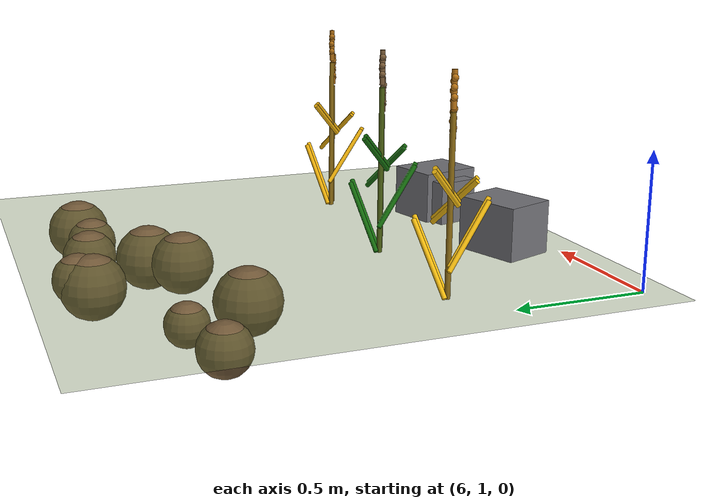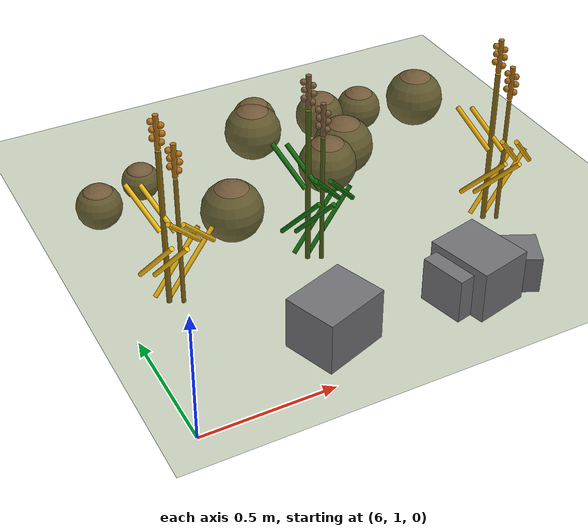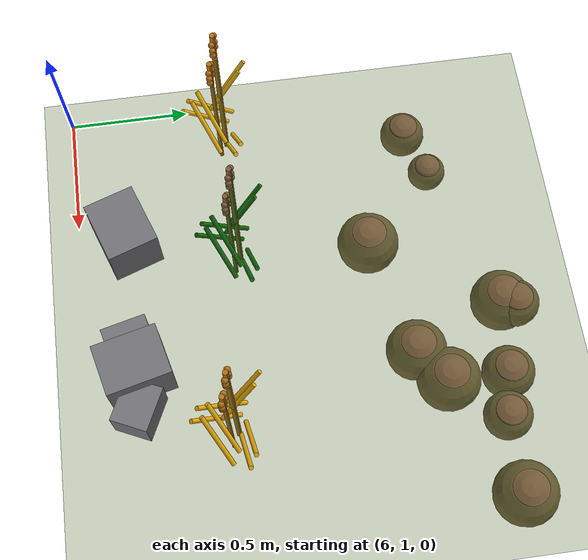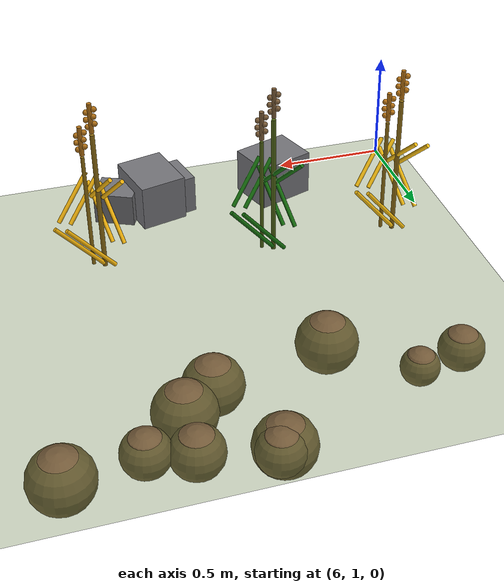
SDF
<sdf version="1.6">
 <world name="default">
  <model name="ground">
   <static>true</static>
   <link name="link">
    <collision name="col"><geometry><plane><normal>0 0 1</normal><size>40 40</size></plane></geometry></collision>
    <visual name="vis">
     <geometry><plane><normal>0 0 1</normal><size>40 40</size></plane></geometry>
     <material><ambient>0.30 0.40 0.15 1</ambient><diffuse>0.30 0.40 0.15 1</diffuse></material>
    </visual>
   </link>
  </model>
  <model name="plant_28">
   <static>true</static>
   <pose>6.18 1.66 0 0 0 0</pose>
   <link name="link">
    <visual name="stem_0">
     <pose>0.000 0.000 0.320 0.000 0.000 0.000</pose>
     <geometry><cylinder><radius>0.01</radius><length>0.64</length></cylinder></geometry>
     <material><ambient>0.55 0.42 0.08 1</ambient><diffuse>0.55 0.42 0.08 1</diffuse></material>
    </visual>
    <visual name="leaf_0_0">
     <pose>0.055 0.045 0.130 0.000 0.700 0.150</pose>
     <geometry><cylinder><radius>0.009</radius><length>0.3</length></cylinder></geometry>
     <material><ambient>0.95 0.73 0.06 1</ambient><diffuse>0.95 0.73 0.06 1</diffuse></material>
    </visual>
    <visual name="leaf_0_1">
     <pose>-0.055 -0.045 0.230 0.000 -0.720 1.900</pose>
     <geometry><cylinder><radius>0.009</radius><length>0.28</length></cylinder></geometry>
     <material><ambient>0.95 0.73 0.06 1</ambient><diffuse>0.95 0.73 0.06 1</diffuse></material>
    </visual>
    <visual name="leaf_0_2">
     <pose>0.055 -0.045 0.320 0.000 0.780 3.700</pose>
     <geometry><cylinder><radius>0.009</radius><length>0.24</length></cylinder></geometry>
     <material><ambient>0.95 0.73 0.06 1</ambient><diffuse>0.95 0.73 0.06 1</diffuse></material>
    </visual>
    <visual name="leaf_0_3">
     <pose>-0.055 0.045 0.400 0.000 -0.800 5.200</pose>
     <geometry><cylinder><radius>0.009</radius><length>0.2</length></cylinder></geometry>
     <material><ambient>0.95 0.73 0.06 1</ambient><diffuse>0.95 0.73 0.06 1</diffuse></material>
    </visual>
    <visual name="stem_1">
     <pose>0.045 -0.025 0.265 0.000 0.000 0.000</pose>
     <geometry><cylinder><radius>0.008</radius><length>0.53</length></cylinder></geometry>
     <material><ambient>0.55 0.42 0.08 1</ambient><diffuse>0.55 0.42 0.08 1</diffuse></material>
    </visual>
    <visual name="leaf_1_0">
     <pose>0.100 0.020 0.130 0.000 0.700 0.150</pose>
     <geometry><cylinder><radius>0.009</radius><length>0.3</length></cylinder></geometry>
     <material><ambient>0.95 0.73 0.06 1</ambient><diffuse>0.95 0.73 0.06 1</diffuse></material>
    </visual>
    <visual name="leaf_1_1">
     <pose>-0.010 -0.070 0.230 0.000 -0.720 1.900</pose>
     <geometry><cylinder><radius>0.009</radius><length>0.28</length></cylinder></geometry>
     <material><ambient>0.95 0.73 0.06 1</ambient><diffuse>0.95 0.73 0.06 1</diffuse></material>
    </visual>
    <visual name="leaf_1_2">
     <pose>0.100 -0.070 0.320 0.000 0.780 3.700</pose>
     <geometry><cylinder><radius>0.009</radius><length>0.24</length></cylinder></geometry>
     <material><ambient>0.95 0.73 0.06 1</ambient><diffuse>0.95 0.73 0.06 1</diffuse></material>
    </visual>
    <visual name="leaf_1_3">
     <pose>-0.010 0.020 0.400 0.000 -0.800 5.200</pose>
     <geometry><cylinder><radius>0.009</radius><length>0.2</length></cylinder></geometry>
     <material><ambient>0.95 0.73 0.06 1</ambient><diffuse>0.95 0.73 0.06 1</diffuse></material>
    </visual>
    <visual name="ear_axis_0">
     <pose>0.000 0.000 0.715 0.000 0.000 0.000</pose>
     <geometry><cylinder><radius>0.010</radius><length>0.13</length></cylinder></geometry>
     <material><ambient>0.72 0.45 0.08 1</ambient><diffuse>0.72 0.45 0.08 1</diffuse></material>
    </visual>
    <visual name="grain_0_0">
     <pose>0.012 -0.006 0.675 0.000 0.000 0.000</pose>
     <geometry><sphere><radius>0.012</radius></sphere></geometry>
     <material><ambient>0.72 0.45 0.08 1</ambient><diffuse>0.72 0.45 0.08 1</diffuse></material>
    </visual>
    <visual name="grain_0_1">
     <pose>-0.014 0.006 0.691 0.000 0.000 0.000</pose>
     <geometry><sphere><radius>0.012</radius></sphere></geometry>
     <material><ambient>0.72 0.45 0.08 1</ambient><diffuse>0.72 0.45 0.08 1</diffuse></material>
    </visual>
    <visual name="grain_0_2">
     <pose>0.016 -0.006 0.707 0.000 0.000 0.000</pose>
     <geometry><sphere><radius>0.012</radius></sphere></geometry>
     <material><ambient>0.72 0.45 0.08 1</ambient><diffuse>0.72 0.45 0.08 1</diffuse></material>
    </visual>
    <visual name="grain_0_3">
     <pose>-0.012 0.006 0.723 0.000 0.000 0.000</pose>
     <geometry><sphere><radius>0.012</radius></sphere></geometry>
     <material><ambient>0.72 0.45 0.08 1</ambient><diffuse>0.72 0.45 0.08 1</diffuse></material>
    </visual>
    <visual name="grain_0_4">
     <pose>0.014 -0.006 0.739 0.000 0.000 0.000</pose>
     <geometry><sphere><radius>0.012</radius></sphere></geometry>
     <material><ambient>0.72 0.45 0.08 1</ambient><diffuse>0.72 0.45 0.08 1</diffuse></material>
    </visual>
    <visual name="grain_0_5">
     <pose>-0.016 0.006 0.755 0.000 0.000 0.000</pose>
     <geometry><sphere><radius>0.012</radius></sphere></geometry>
     <material><ambient>0.72 0.45 0.08 1</ambient><diffuse>0.72 0.45 0.08 1</diffuse></material>
    </visual>
    <visual name="ear_axis_1">
     <pose>0.045 -0.025 0.605 0.000 0.000 0.000</pose>
     <geometry><cylinder><radius>0.010</radius><length>0.13</length></cylinder></geometry>
     <material><ambient>0.72 0.45 0.08 1</ambient><diffuse>0.72 0.45 0.08 1</diffuse></material>
    </visual>
    <visual name="grain_1_0">
     <pose>0.057 -0.031 0.565 0.000 0.000 0.000</pose>
     <geometry><sphere><radius>0.012</radius></sphere></geometry>
     <material><ambient>0.72 0.45 0.08 1</ambient><diffuse>0.72 0.45 0.08 1</diffuse></material>
    </visual>
    <visual name="grain_1_1">
     <pose>0.031 -0.019 0.581 0.000 0.000 0.000</pose>
     <geometry><sphere><radius>0.012</radius></sphere></geometry>
     <material><ambient>0.72 0.45 0.08 1</ambient><diffuse>0.72 0.45 0.08 1</diffuse></material>
    </visual>
    <visual name="grain_1_2">
     <pose>0.061 -0.031 0.597 0.000 0.000 0.000</pose>
     <geometry><sphere><radius>0.012</radius></sphere></geometry>
     <material><ambient>0.72 0.45 0.08 1</ambient><diffuse>0.72 0.45 0.08 1</diffuse></material>
    </visual>
    <visual name="grain_1_3">
     <pose>0.033 -0.019 0.613 0.000 0.000 0.000</pose>
     <geometry><sphere><radius>0.012</radius></sphere></geometry>
     <material><ambient>0.72 0.45 0.08 1</ambient><diffuse>0.72 0.45 0.08 1</diffuse></material>
    </visual>
    <visual name="grain_1_4">
     <pose>0.059 -0.031 0.629 0.000 0.000 0.000</pose>
     <geometry><sphere><radius>0.012</radius></sphere></geometry>
     <material><ambient>0.72 0.45 0.08 1</ambient><diffuse>0.72 0.45 0.08 1</diffuse></material>
    </visual>
    <visual name="grain_1_5">
     <pose>0.029 -0.019 0.645 0.000 0.000 0.000</pose>
     <geometry><sphere><radius>0.012</radius></sphere></geometry>
     <material><ambient>0.72 0.45 0.08 1</ambient><diffuse>0.72 0.45 0.08 1</diffuse></material>
    </visual>
   </link>
  </model>
  <model name="plant_29">
   <static>true</static>
   <pose>6.74 1.66 0 0 0 0</pose>
   <link name="link">
    <visual name="stem_0">
     <pose>0.000 0.000 0.320 0.000 0.000 0.000</pose>
     <geometry><cylinder><radius>0.01</radius><length>0.64</length></cylinder></geometry>
     <material><ambient>0.30 0.38 0.08 1</ambient><diffuse>0.30 0.38 0.08 1</diffuse></material>
    </visual>
    <visual name="leaf_0_0">
     <pose>0.055 0.045 0.130 0.000 0.700 0.150</pose>
     <geometry><cylinder><radius>0.009</radius><length>0.3</length></cylinder></geometry>
     <material><ambient>0.08 0.42 0.05 1</ambient><diffuse>0.08 0.42 0.05 1</diffuse></material>
    </visual>
    <visual name="leaf_0_1">
     <pose>-0.055 -0.045 0.230 0.000 -0.720 1.900</pose>
     <geometry><cylinder><radius>0.009</radius><length>0.28</length></cylinder></geometry>
     <material><ambient>0.08 0.42 0.05 1</ambient><diffuse>0.08 0.42 0.05 1</diffuse></material>
    </visual>
    <visual name="leaf_0_2">
     <pose>0.055 -0.045 0.320 0.000 0.780 3.700</pose>
     <geometry><cylinder><radius>0.009</radius><length>0.24</length></cylinder></geometry>
     <material><ambient>0.08 0.42 0.05 1</ambient><diffuse>0.08 0.42 0.05 1</diffuse></material>
    </visual>
    <visual name="leaf_0_3">
     <pose>-0.055 0.045 0.400 0.000 -0.800 5.200</pose>
     <geometry><cylinder><radius>0.009</radius><length>0.2</length></cylinder></geometry>
     <material><ambient>0.08 0.42 0.05 1</ambient><diffuse>0.08 0.42 0.05 1</diffuse></material>
    </visual>
    <visual name="stem_1">
     <pose>0.045 -0.025 0.265 0.000 0.000 0.000</pose>
     <geometry><cylinder><radius>0.008</radius><length>0.53</length></cylinder></geometry>
     <material><ambient>0.30 0.38 0.08 1</ambient><diffuse>0.30 0.38 0.08 1</diffuse></material>
    </visual>
    <visual name="leaf_1_0">
     <pose>0.100 0.020 0.130 0.000 0.700 0.150</pose>
     <geometry><cylinder><radius>0.009</radius><length>0.3</length></cylinder></geometry>
     <material><ambient>0.08 0.42 0.05 1</ambient><diffuse>0.08 0.42 0.05 1</diffuse></material>
    </visual>
    <visual name="leaf_1_1">
     <pose>-0.010 -0.070 0.230 0.000 -0.720 1.900</pose>
     <geometry><cylinder><radius>0.009</radius><length>0.28</length></cylinder></geometry>
     <material><ambient>0.08 0.42 0.05 1</ambient><diffuse>0.08 0.42 0.05 1</diffuse></material>
    </visual>
    <visual name="leaf_1_2">
     <pose>0.100 -0.070 0.320 0.000 0.780 3.700</pose>
     <geometry><cylinder><radius>0.009</radius><length>0.24</length></cylinder></geometry>
     <material><ambient>0.08 0.42 0.05 1</ambient><diffuse>0.08 0.42 0.05 1</diffuse></material>
    </visual>
    <visual name="leaf_1_3">
     <pose>-0.010 0.020 0.400 0.000 -0.800 5.200</pose>
     <geometry><cylinder><radius>0.009</radius><length>0.2</length></cylinder></geometry>
     <material><ambient>0.08 0.42 0.05 1</ambient><diffuse>0.08 0.42 0.05 1</diffuse></material>
    </visual>
    <visual name="ear_axis_0">
     <pose>0.000 0.000 0.715 0.000 0.000 0.000</pose>
     <geometry><cylinder><radius>0.010</radius><length>0.13</length></cylinder></geometry>
     <material><ambient>0.48 0.36 0.22 1</ambient><diffuse>0.48 0.36 0.22 1</diffuse></material>
    </visual>
    <visual name="grain_0_0">
     <pose>0.012 -0.006 0.675 0.000 0.000 0.000</pose>
     <geometry><sphere><radius>0.012</radius></sphere></geometry>
     <material><ambient>0.48 0.36 0.22 1</ambient><diffuse>0.48 0.36 0.22 1</diffuse></material>
    </visual>
    <visual name="grain_0_1">
     <pose>-0.014 0.006 0.691 0.000 0.000 0.000</pose>
     <geometry><sphere><radius>0.012</radius></sphere></geometry>
     <material><ambient>0.48 0.36 0.22 1</ambient><diffuse>0.48 0.36 0.22 1</diffuse></material>
    </visual>
    <visual name="grain_0_2">
     <pose>0.016 -0.006 0.707 0.000 0.000 0.000</pose>
     <geometry><sphere><radius>0.012</radius></sphere></geometry>
     <material><ambient>0.48 0.36 0.22 1</ambient><diffuse>0.48 0.36 0.22 1</diffuse></material>
    </visual>
    <visual name="grain_0_3">
     <pose>-0.012 0.006 0.723 0.000 0.000 0.000</pose>
     <geometry><sphere><radius>0.012</radius></sphere></geometry>
     <material><ambient>0.48 0.36 0.22 1</ambient><diffuse>0.48 0.36 0.22 1</diffuse></material>
    </visual>
    <visual name="grain_0_4">
     <pose>0.014 -0.006 0.739 0.000 0.000 0.000</pose>
     <geometry><sphere><radius>0.012</radius></sphere></geometry>
     <material><ambient>0.48 0.36 0.22 1</ambient><diffuse>0.48 0.36 0.22 1</diffuse></material>
    </visual>
    <visual name="grain_0_5">
     <pose>-0.016 0.006 0.755 0.000 0.000 0.000</pose>
     <geometry><sphere><radius>0.012</radius></sphere></geometry>
     <material><ambient>0.48 0.36 0.22 1</ambient><diffuse>0.48 0.36 0.22 1</diffuse></material>
    </visual>
    <visual name="ear_axis_1">
     <pose>0.045 -0.025 0.605 0.000 0.000 0.000</pose>
     <geometry><cylinder><radius>0.010</radius><length>0.13</length></cylinder></geometry>
     <material><ambient>0.48 0.36 0.22 1</ambient><diffuse>0.48 0.36 0.22 1</diffuse></material>
    </visual>
    <visual name="grain_1_0">
     <pose>0.057 -0.031 0.565 0.000 0.000 0.000</pose>
     <geometry><sphere><radius>0.012</radius></sphere></geometry>
     <material><ambient>0.48 0.36 0.22 1</ambient><diffuse>0.48 0.36 0.22 1</diffuse></material>
    </visual>
    <visual name="grain_1_1">
     <pose>0.031 -0.019 0.581 0.000 0.000 0.000</pose>
     <geometry><sphere><radius>0.012</radius></sphere></geometry>
     <material><ambient>0.48 0.36 0.22 1</ambient><diffuse>0.48 0.36 0.22 1</diffuse></material>
    </visual>
    <visual name="grain_1_2">
     <pose>0.061 -0.031 0.597 0.000 0.000 0.000</pose>
     <geometry><sphere><radius>0.012</radius></sphere></geometry>
     <material><ambient>0.48 0.36 0.22 1</ambient><diffuse>0.48 0.36 0.22 1</diffuse></material>
    </visual>
    <visual name="grain_1_3">
     <pose>0.033 -0.019 0.613 0.000 0.000 0.000</pose>
     <geometry><sphere><radius>0.012</radius></sphere></geometry>
     <material><ambient>0.48 0.36 0.22 1</ambient><diffuse>0.48 0.36 0.22 1</diffuse></material>
    </visual>
    <visual name="grain_1_4">
     <pose>0.059 -0.031 0.629 0.000 0.000 0.000</pose>
     <geometry><sphere><radius>0.012</radius></sphere></geometry>
     <material><ambient>0.48 0.36 0.22 1</ambient><diffuse>0.48 0.36 0.22 1</diffuse></material>
    </visual>
    <visual name="grain_1_5">
     <pose>0.029 -0.019 0.645 0.000 0.000 0.000</pose>
     <geometry><sphere><radius>0.012</radius></sphere></geometry>
     <material><ambient>0.48 0.36 0.22 1</ambient><diffuse>0.48 0.36 0.22 1</diffuse></material>
    </visual>
   </link>
  </model>
  <model name="plant_30">
   <static>true</static>
   <pose>7.47 1.57 0 0 0 0</pose>
   <link name="link">
    <visual name="stem_0">
     <pose>0.000 0.000 0.320 0.000 0.000 0.000</pose>
     <geometry><cylinder><radius>0.01</radius><length>0.64</length></cylinder></geometry>
     <material><ambient>0.55 0.42 0.08 1</ambient><diffuse>0.55 0.42 0.08 1</diffuse></material>
    </visual>
    <visual name="leaf_0_0">
     <pose>0.055 0.045 0.130 0.000 0.700 0.150</pose>
     <geometry><cylinder><radius>0.009</radius><length>0.3</length></cylinder></geometry>
     <material><ambient>0.92 0.68 0.04 1</ambient><diffuse>0.92 0.68 0.04 1</diffuse></material>
    </visual>
    <visual name="leaf_0_1">
     <pose>-0.055 -0.045 0.230 0.000 -0.720 1.900</pose>
     <geometry><cylinder><radius>0.009</radius><length>0.28</length></cylinder></geometry>
     <material><ambient>0.92 0.68 0.04 1</ambient><diffuse>0.92 0.68 0.04 1</diffuse></material>
    </visual>
    <visual name="leaf_0_2">
     <pose>0.055 -0.045 0.320 0.000 0.780 3.700</pose>
     <geometry><cylinder><radius>0.009</radius><length>0.24</length></cylinder></geometry>
     <material><ambient>0.92 0.68 0.04 1</ambient><diffuse>0.92 0.68 0.04 1</diffuse></material>
    </visual>
    <visual name="leaf_0_3">
     <pose>-0.055 0.045 0.400 0.000 -0.800 5.200</pose>
     <geometry><cylinder><radius>0.009</radius><length>0.2</length></cylinder></geometry>
     <material><ambient>0.92 0.68 0.04 1</ambient><diffuse>0.92 0.68 0.04 1</diffuse></material>
    </visual>
    <visual name="stem_1">
     <pose>0.045 -0.025 0.265 0.000 0.000 0.000</pose>
     <geometry><cylinder><radius>0.008</radius><length>0.53</length></cylinder></geometry>
     <material><ambient>0.55 0.42 0.08 1</ambient><diffuse>0.55 0.42 0.08 1</diffuse></material>
    </visual>
    <visual name="leaf_1_0">
     <pose>0.100 0.020 0.130 0.000 0.700 0.150</pose>
     <geometry><cylinder><radius>0.009</radius><length>0.3</length></cylinder></geometry>
     <material><ambient>0.92 0.68 0.04 1</ambient><diffuse>0.92 0.68 0.04 1</diffuse></material>
    </visual>
    <visual name="leaf_1_1">
     <pose>-0.010 -0.070 0.230 0.000 -0.720 1.900</pose>
     <geometry><cylinder><radius>0.009</radius><length>0.28</length></cylinder></geometry>
     <material><ambient>0.92 0.68 0.04 1</ambient><diffuse>0.92 0.68 0.04 1</diffuse></material>
    </visual>
    <visual name="leaf_1_2">
     <pose>0.100 -0.070 0.320 0.000 0.780 3.700</pose>
     <geometry><cylinder><radius>0.009</radius><length>0.24</length></cylinder></geometry>
     <material><ambient>0.92 0.68 0.04 1</ambient><diffuse>0.92 0.68 0.04 1</diffuse></material>
    </visual>
    <visual name="leaf_1_3">
     <pose>-0.010 0.020 0.400 0.000 -0.800 5.200</pose>
     <geometry><cylinder><radius>0.009</radius><length>0.2</length></cylinder></geometry>
     <material><ambient>0.92 0.68 0.04 1</ambient><diffuse>0.92 0.68 0.04 1</diffuse></material>
    </visual>
    <visual name="ear_axis_0">
     <pose>0.000 0.000 0.715 0.000 0.000 0.000</pose>
     <geometry><cylinder><radius>0.010</radius><length>0.13</length></cylinder></geometry>
     <material><ambient>0.68 0.43 0.08 1</ambient><diffuse>0.68 0.43 0.08 1</diffuse></material>
    </visual>
    <visual name="grain_0_0">
     <pose>0.012 -0.006 0.675 0.000 0.000 0.000</pose>
     <geometry><sphere><radius>0.012</radius></sphere></geometry>
     <material><ambient>0.68 0.43 0.08 1</ambient><diffuse>0.68 0.43 0.08 1</diffuse></material>
    </visual>
    <visual name="grain_0_1">
     <pose>-0.014 0.006 0.691 0.000 0.000 0.000</pose>
     <geometry><sphere><radius>0.012</radius></sphere></geometry>
     <material><ambient>0.68 0.43 0.08 1</ambient><diffuse>0.68 0.43 0.08 1</diffuse></material>
    </visual>
    <visual name="grain_0_2">
     <pose>0.016 -0.006 0.707 0.000 0.000 0.000</pose>
     <geometry><sphere><radius>0.012</radius></sphere></geometry>
     <material><ambient>0.68 0.43 0.08 1</ambient><diffuse>0.68 0.43 0.08 1</diffuse></material>
    </visual>
    <visual name="grain_0_3">
     <pose>-0.012 0.006 0.723 0.000 0.000 0.000</pose>
     <geometry><sphere><radius>0.012</radius></sphere></geometry>
     <material><ambient>0.68 0.43 0.08 1</ambient><diffuse>0.68 0.43 0.08 1</diffuse></material>
    </visual>
    <visual name="grain_0_4">
     <pose>0.014 -0.006 0.739 0.000 0.000 0.000</pose>
     <geometry><sphere><radius>0.012</radius></sphere></geometry>
     <material><ambient>0.68 0.43 0.08 1</ambient><diffuse>0.68 0.43 0.08 1</diffuse></material>
    </visual>
    <visual name="grain_0_5">
     <pose>-0.016 0.006 0.755 0.000 0.000 0.000</pose>
     <geometry><sphere><radius>0.012</radius></sphere></geometry>
     <material><ambient>0.68 0.43 0.08 1</ambient><diffuse>0.68 0.43 0.08 1</diffuse></material>
    </visual>
    <visual name="ear_axis_1">
     <pose>0.045 -0.025 0.605 0.000 0.000 0.000</pose>
     <geometry><cylinder><radius>0.010</radius><length>0.13</length></cylinder></geometry>
     <material><ambient>0.68 0.43 0.08 1</ambient><diffuse>0.68 0.43 0.08 1</diffuse></material>
    </visual>
    <visual name="grain_1_0">
     <pose>0.057 -0.031 0.565 0.000 0.000 0.000</pose>
     <geometry><sphere><radius>0.012</radius></sphere></geometry>
     <material><ambient>0.68 0.43 0.08 1</ambient><diffuse>0.68 0.43 0.08 1</diffuse></material>
    </visual>
    <visual name="grain_1_1">
     <pose>0.031 -0.019 0.581 0.000 0.000 0.000</pose>
     <geometry><sphere><radius>0.012</radius></sphere></geometry>
     <material><ambient>0.68 0.43 0.08 1</ambient><diffuse>0.68 0.43 0.08 1</diffuse></material>
    </visual>
    <visual name="grain_1_2">
     <pose>0.061 -0.031 0.597 0.000 0.000 0.000</pose>
     <geometry><sphere><radius>0.012</radius></sphere></geometry>
     <material><ambient>0.68 0.43 0.08 1</ambient><diffuse>0.68 0.43 0.08 1</diffuse></material>
    </visual>
    <visual name="grain_1_3">
     <pose>0.033 -0.019 0.613 0.000 0.000 0.000</pose>
     <geometry><sphere><radius>0.012</radius></sphere></geometry>
     <material><ambient>0.68 0.43 0.08 1</ambient><diffuse>0.68 0.43 0.08 1</diffuse></material>
    </visual>
    <visual name="grain_1_4">
     <pose>0.059 -0.031 0.629 0.000 0.000 0.000</pose>
     <geometry><sphere><radius>0.012</radius></sphere></geometry>
     <material><ambient>0.68 0.43 0.08 1</ambient><diffuse>0.68 0.43 0.08 1</diffuse></material>
    </visual>
    <visual name="grain_1_5">
     <pose>0.029 -0.019 0.645 0.000 0.000 0.000</pose>
     <geometry><sphere><radius>0.012</radius></sphere></geometry>
     <material><ambient>0.68 0.43 0.08 1</ambient><diffuse>0.68 0.43 0.08 1</diffuse></material>
    </visual>
   </link>
  </model>
  <model name="rock_01">
   <static>true</static>
   <pose>7.34 1.20 0.074 0 0 2.70</pose>
   <link name="link">
    <collision name="c"><geometry><box><size>0.18 0.15 0.147</size></box></geometry></collision>
    <visual name="v">
     <geometry><box><size>0.18 0.15 0.147</size></box></geometry>
     <material><ambient>0.45 0.45 0.47 1</ambient><diffuse>0.45 0.45 0.47 1</diffuse></material>
    </visual>
   </link>
  </model>
  <model name="rock_03">
   <static>true</static>
   <pose>7.18 1.20 0.103 0 0 1.81</pose>
   <link name="link">
    <collision name="c"><geometry><box><size>0.26 0.21 0.207</size></box></geometry></collision>
    <visual name="v">
     <geometry><box><size>0.26 0.21 0.207</size></box></geometry>
     <material><ambient>0.45 0.45 0.47 1</ambient><diffuse>0.45 0.45 0.47 1</diffuse></material>
    </visual>
   </link>
  </model>
  <model name="rock_07">
   <static>true</static>
   <pose>6.60 1.20 0.104 0 0 0.34</pose>
   <link name="link">
    <collision name="c"><geometry><box><size>0.26 0.21 0.207</size></box></geometry></collision>
    <visual name="v">
     <geometry><box><size>0.26 0.21 0.207</size></box></geometry>
     <material><ambient>0.45 0.45 0.47 1</ambient><diffuse>0.45 0.45 0.47 1</diffuse></material>
    </visual>
   </link>
  </model>
  <model name="rock_09">
   <static>true</static>
   <pose>7.12 1.20 0.088 0 0 0.24</pose>
   <link name="link">
    <collision name="c"><geometry><box><size>0.22 0.18 0.176</size></box></geometry></collision>
    <visual name="v">
     <geometry><box><size>0.22 0.18 0.176</size></box></geometry>
     <material><ambient>0.45 0.45 0.47 1</ambient><diffuse>0.45 0.45 0.47 1</diffuse></material>
    </visual>
   </link>
  </model>
  <model name="bump_2_04">
   <static>true</static>
   <pose>7.34 2.68 -0.089 0 0 0</pose>
   <link name="link">
    <collision name="c"><geometry><sphere><radius>0.109</radius></sphere></geometry></collision>
    <visual name="v">
     <geometry><sphere><radius>0.109</radius></sphere></geometry>
     <material><ambient>0.45 0.35 0.22 1</ambient><diffuse>0.45 0.35 0.22 1</diffuse></material>
    </visual>
   </link>
  </model>
  <model name="bump_2_06">
   <static>true</static>
   <pose>6.40 2.51 -0.060 0 0 0</pose>
   <link name="link">
    <collision name="c"><geometry><sphere><radius>0.080</radius></sphere></geometry></collision>
    <visual name="v">
     <geometry><sphere><radius>0.080</radius></sphere></geometry>
     <material><ambient>0.45 0.35 0.22 1</ambient><diffuse>0.45 0.35 0.22 1</diffuse></material>
    </visual>
   </link>
  </model>
  <model name="bump_2_07">
   <static>true</static>
   <pose>6.19 2.44 -0.076 0 0 0</pose>
   <link name="link">
    <collision name="c"><geometry><sphere><radius>0.096</radius></sphere></geometry></collision>
    <visual name="v">
     <geometry><sphere><radius>0.096</radius></sphere></geometry>
     <material><ambient>0.45 0.35 0.22 1</ambient><diffuse>0.45 0.35 0.22 1</diffuse></material>
    </visual>
   </link>
  </model>
  <model name="bump_2_09">
   <static>true</static>
   <pose>7.33 2.44 -0.113 0 0 0</pose>
   <link name="link">
    <collision name="c"><geometry><sphere><radius>0.133</radius></sphere></geometry></collision>
    <visual name="v">
     <geometry><sphere><radius>0.133</radius></sphere></geometry>
     <material><ambient>0.45 0.35 0.22 1</ambient><diffuse>0.45 0.35 0.22 1</diffuse></material>
    </visual>
   </link>
  </model>
  <model name="bump_2_12">
   <static>true</static>
   <pose>7.02 2.72 -0.108 0 0 0</pose>
   <link name="link">
    <collision name="c"><geometry><sphere><radius>0.128</radius></sphere></geometry></collision>
    <visual name="v">
     <geometry><sphere><radius>0.128</radius></sphere></geometry>
     <material><ambient>0.45 0.35 0.22 1</ambient><diffuse>0.45 0.35 0.22 1</diffuse></material>
    </visual>
   </link>
  </model>
  <model name="bump_2_14">
   <static>true</static>
   <pose>7.19 2.33 -0.107 0 0 0</pose>
   <link name="link">
    <collision name="c"><geometry><sphere><radius>0.127</radius></sphere></geometry></collision>
    <visual name="v">
     <geometry><sphere><radius>0.127</radius></sphere></geometry>
     <material><ambient>0.45 0.35 0.22 1</ambient><diffuse>0.45 0.35 0.22 1</diffuse></material>
    </visual>
   </link>
  </model>
  <model name="bump_2_16">
   <static>true</static>
   <pose>7.83 2.65 -0.112 0 0 0</pose>
   <link name="link">
    <collision name="c"><geometry><sphere><radius>0.132</radius></sphere></geometry></collision>
    <visual name="v">
     <geometry><sphere><radius>0.132</radius></sphere></geometry>
     <material><ambient>0.45 0.35 0.22 1</ambient><diffuse>0.45 0.35 0.22 1</diffuse></material>
    </visual>
   </link>
  </model>
  <model name="bump_2_18">
   <static>true</static>
   <pose>7.52 2.64 -0.080 0 0 0</pose>
   <link name="link">
    <collision name="c"><geometry><sphere><radius>0.100</radius></sphere></geometry></collision>
    <visual name="v">
     <geometry><sphere><radius>0.100</radius></sphere></geometry>
     <material><ambient>0.45 0.35 0.22 1</ambient><diffuse>0.45 0.35 0.22 1</diffuse></material>
    </visual>
   </link>
  </model>
  <model name="bump_2_19">
   <static>true</static>
   <pose>6.68 2.21 -0.112 0 0 0</pose>
   <link name="link">
    <collision name="c"><geometry><sphere><radius>0.132</radius></sphere></geometry></collision>
    <visual name="v">
     <geometry><sphere><radius>0.132</radius></sphere></geometry>
     <material><ambient>0.45 0.35 0.22 1</ambient><diffuse>0.45 0.35 0.22 1</diffuse></material>
    </visual>
   </link>
  </model>
  <model name="bump_2_24">
   <static>true</static>
   <pose>7.05 2.77 -0.080 0 0 0</pose>
   <link name="link">
    <collision name="c"><geometry><sphere><radius>0.100</radius></sphere></geometry></collision>
    <visual name="v">
     <geometry><sphere><radius>0.100</radius></sphere></geometry>
     <material><ambient>0.45 0.35 0.22 1</ambient><diffuse>0.45 0.35 0.22 1</diffuse></material>
    </visual>
   </link>
  </model>
 </world>
</sdf>
